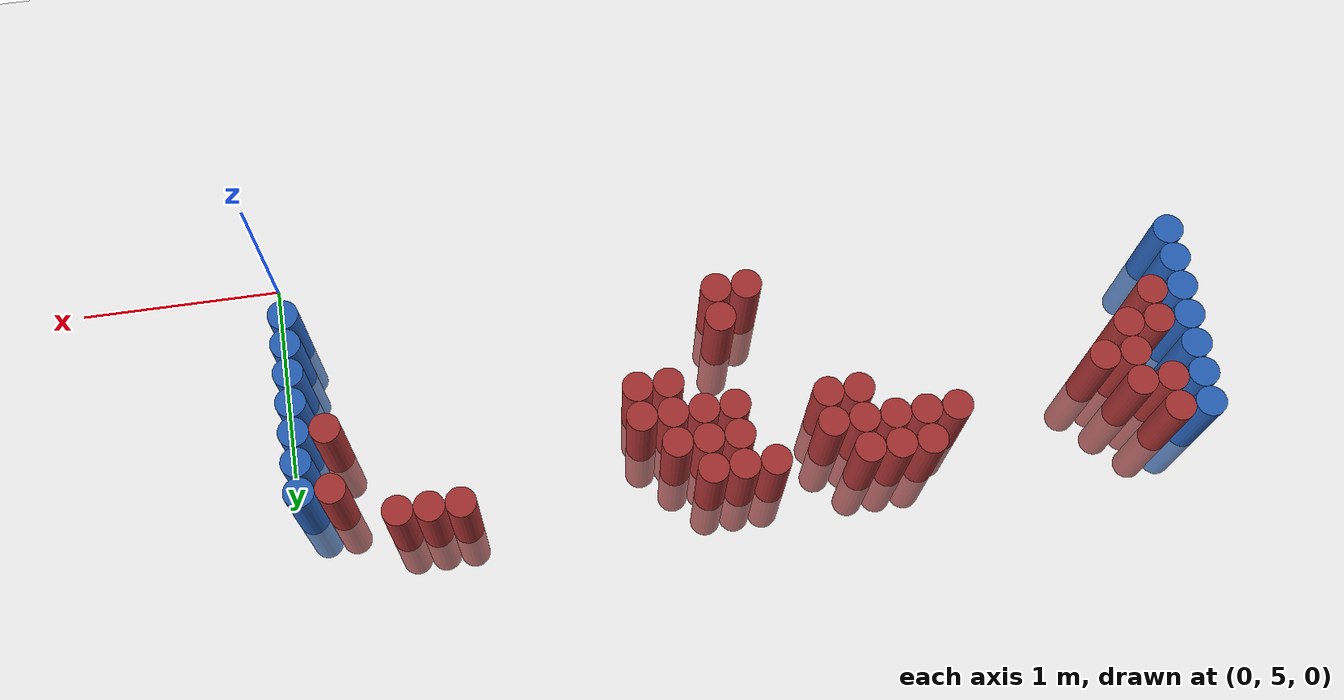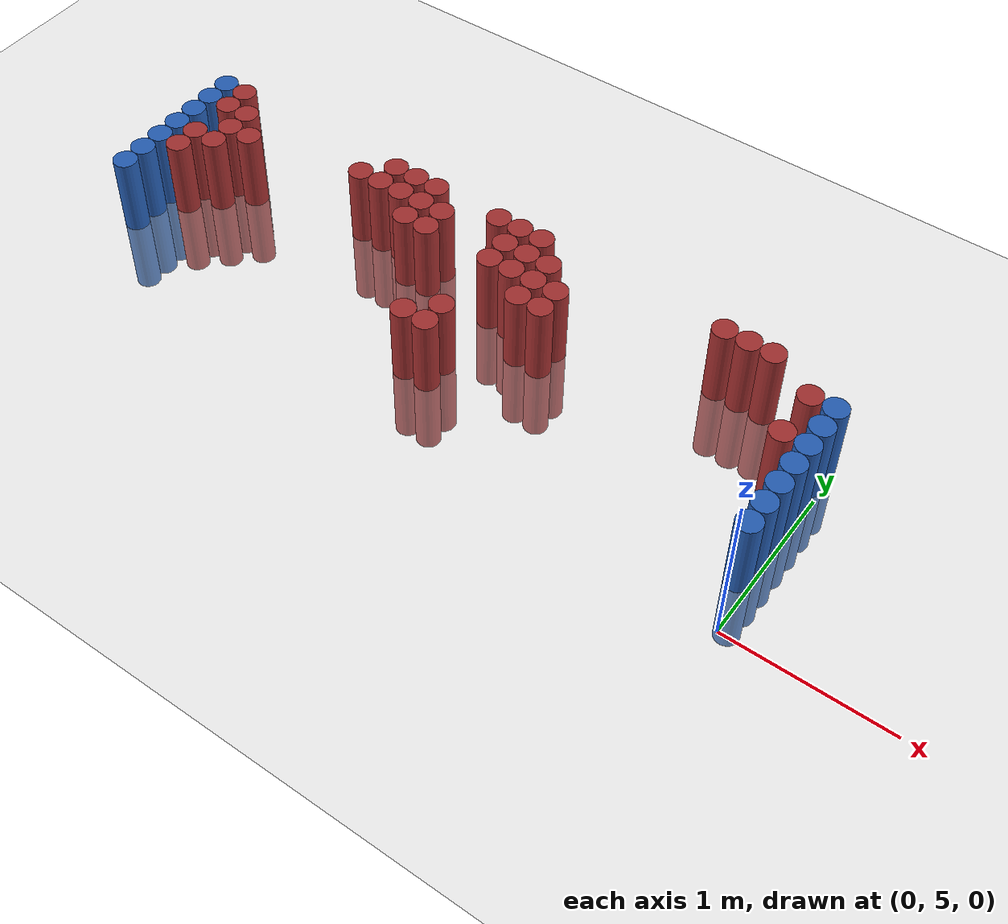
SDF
<sdf version="1.6">
 <world name="default">
  <model name="ground_plane">
   <static>1</static>
   <link name="link">
    <collision name="collision">
     <geometry><plane><normal>0 0 1</normal><size>100 100</size></plane></geometry>
     <surface><friction><ode><mu>100</mu><mu2>50</mu2></ode></friction></surface>
    </collision>
    <visual name="visual">
     <cast_shadows>0</cast_shadows>
     <geometry><plane><normal>0 0 1</normal><size>100 100</size></plane></geometry>
     <material>
      <script><uri>file://media/materials/scripts/gazebo.material</uri><name>Gazebo/Grey</name></script>
     </material>
    </visual>
   </link>
  </model>
  <model name="unit_cylinder_98">
   <static>1</static>
   <pose>-4.425000 5.475000 0.000000 0.000000 0.000000 0.000000</pose>
   <link name="link">
    <inertial>
     <mass>1</mass>
     <inertia><ixx>0.145833</ixx><ixy>0</ixy><ixz>0</ixz><iyy>0.145833</iyy><iyz>0</iyz><izz>0.125</izz></inertia>
    </inertial>
    <collision name="collision">
     <geometry><cylinder><radius>0.075000</radius><length>1</length></cylinder></geometry>
    </collision>
    <visual name="visual">
     <geometry><cylinder><radius>0.075000</radius><length>1</length></cylinder></geometry>
     <material>
      <ambient>0.152000 0.379000 0.720000 1</ambient>
      <diffuse>0.152000 0.379000 0.720000 1</diffuse>
     </material>
     <material>
      <script><name>Gazebo/Grey</name><uri>file://media/materials/scripts/gazebo.material</uri></script>
     </material>
    </visual>
   </link>
  </model>
  <model name="unit_cylinder_99">
   <static>1</static>
   <pose>-4.425000 5.625000 0.000000 0.000000 0.000000 0.000000</pose>
   <link name="link">
    <inertial>
     <mass>1</mass>
     <inertia><ixx>0.145833</ixx><ixy>0</ixy><ixz>0</ixz><iyy>0.145833</iyy><iyz>0</iyz><izz>0.125</izz></inertia>
    </inertial>
    <collision name="collision">
     <geometry><cylinder><radius>0.075000</radius><length>1</length></cylinder></geometry>
    </collision>
    <visual name="visual">
     <geometry><cylinder><radius>0.075000</radius><length>1</length></cylinder></geometry>
     <material>
      <ambient>0.152000 0.379000 0.720000 1</ambient>
      <diffuse>0.152000 0.379000 0.720000 1</diffuse>
     </material>
     <material>
      <script><name>Gazebo/Grey</name><uri>file://media/materials/scripts/gazebo.material</uri></script>
     </material>
    </visual>
   </link>
  </model>
  <model name="unit_cylinder_100">
   <static>1</static>
   <pose>-4.425000 5.775000 0.000000 0.000000 0.000000 0.000000</pose>
   <link name="link">
    <inertial>
     <mass>1</mass>
     <inertia><ixx>0.145833</ixx><ixy>0</ixy><ixz>0</ixz><iyy>0.145833</iyy><iyz>0</iyz><izz>0.125</izz></inertia>
    </inertial>
    <collision name="collision">
     <geometry><cylinder><radius>0.075000</radius><length>1</length></cylinder></geometry>
    </collision>
    <visual name="visual">
     <geometry><cylinder><radius>0.075000</radius><length>1</length></cylinder></geometry>
     <material>
      <ambient>0.152000 0.379000 0.720000 1</ambient>
      <diffuse>0.152000 0.379000 0.720000 1</diffuse>
     </material>
     <material>
      <script><name>Gazebo/Grey</name><uri>file://media/materials/scripts/gazebo.material</uri></script>
     </material>
    </visual>
   </link>
  </model>
  <model name="unit_cylinder_101">
   <static>1</static>
   <pose>-4.425000 5.925000 0.000000 0.000000 0.000000 0.000000</pose>
   <link name="link">
    <inertial>
     <mass>1</mass>
     <inertia><ixx>0.145833</ixx><ixy>0</ixy><ixz>0</ixz><iyy>0.145833</iyy><iyz>0</iyz><izz>0.125</izz></inertia>
    </inertial>
    <collision name="collision">
     <geometry><cylinder><radius>0.075000</radius><length>1</length></cylinder></geometry>
    </collision>
    <visual name="visual">
     <geometry><cylinder><radius>0.075000</radius><length>1</length></cylinder></geometry>
     <material>
      <ambient>0.152000 0.379000 0.720000 1</ambient>
      <diffuse>0.152000 0.379000 0.720000 1</diffuse>
     </material>
     <material>
      <script><name>Gazebo/Grey</name><uri>file://media/materials/scripts/gazebo.material</uri></script>
     </material>
    </visual>
   </link>
  </model>
  <model name="unit_cylinder_102">
   <static>1</static>
   <pose>-4.425000 6.075000 0.000000 0.000000 0.000000 0.000000</pose>
   <link name="link">
    <inertial>
     <mass>1</mass>
     <inertia><ixx>0.145833</ixx><ixy>0</ixy><ixz>0</ixz><iyy>0.145833</iyy><iyz>0</iyz><izz>0.125</izz></inertia>
    </inertial>
    <collision name="collision">
     <geometry><cylinder><radius>0.075000</radius><length>1</length></cylinder></geometry>
    </collision>
    <visual name="visual">
     <geometry><cylinder><radius>0.075000</radius><length>1</length></cylinder></geometry>
     <material>
      <ambient>0.152000 0.379000 0.720000 1</ambient>
      <diffuse>0.152000 0.379000 0.720000 1</diffuse>
     </material>
     <material>
      <script><name>Gazebo/Grey</name><uri>file://media/materials/scripts/gazebo.material</uri></script>
     </material>
    </visual>
   </link>
  </model>
  <model name="unit_cylinder_103">
   <static>1</static>
   <pose>-4.425000 6.225000 0.000000 0.000000 0.000000 0.000000</pose>
   <link name="link">
    <inertial>
     <mass>1</mass>
     <inertia><ixx>0.145833</ixx><ixy>0</ixy><ixz>0</ixz><iyy>0.145833</iyy><iyz>0</iyz><izz>0.125</izz></inertia>
    </inertial>
    <collision name="collision">
     <geometry><cylinder><radius>0.075000</radius><length>1</length></cylinder></geometry>
    </collision>
    <visual name="visual">
     <geometry><cylinder><radius>0.075000</radius><length>1</length></cylinder></geometry>
     <material>
      <ambient>0.152000 0.379000 0.720000 1</ambient>
      <diffuse>0.152000 0.379000 0.720000 1</diffuse>
     </material>
     <material>
      <script><name>Gazebo/Grey</name><uri>file://media/materials/scripts/gazebo.material</uri></script>
     </material>
    </visual>
   </link>
  </model>
  <model name="unit_cylinder_104">
   <static>1</static>
   <pose>-4.425000 6.375000 0.000000 0.000000 0.000000 0.000000</pose>
   <link name="link">
    <inertial>
     <mass>1</mass>
     <inertia><ixx>0.145833</ixx><ixy>0</ixy><ixz>0</ixz><iyy>0.145833</iyy><iyz>0</iyz><izz>0.125</izz></inertia>
    </inertial>
    <collision name="collision">
     <geometry><cylinder><radius>0.075000</radius><length>1</length></cylinder></geometry>
    </collision>
    <visual name="visual">
     <geometry><cylinder><radius>0.075000</radius><length>1</length></cylinder></geometry>
     <material>
      <ambient>0.152000 0.379000 0.720000 1</ambient>
      <diffuse>0.152000 0.379000 0.720000 1</diffuse>
     </material>
     <material>
      <script><name>Gazebo/Grey</name><uri>file://media/materials/scripts/gazebo.material</uri></script>
     </material>
    </visual>
   </link>
  </model>
  <model name="unit_cylinder_126">
   <static>1</static>
   <pose>-4.275000 5.775000 0.000000 0.000000 0.000000 0.000000</pose>
   <link name="link">
    <inertial>
     <mass>1</mass>
     <inertia><ixx>0.145833</ixx><ixy>0</ixy><ixz>0</ixz><iyy>0.145833</iyy><iyz>0</iyz><izz>0.125</izz></inertia>
    </inertial>
    <collision name="collision">
     <geometry><cylinder><radius>0.075000</radius><length>1</length></cylinder></geometry>
    </collision>
    <visual name="visual">
     <geometry><cylinder><radius>0.075000</radius><length>1</length></cylinder></geometry>
     <material>
      <ambient>0.648000 0.192000 0.192000 1</ambient>
      <diffuse>0.648000 0.192000 0.192000 1</diffuse>
     </material>
     <material>
      <script><name>Gazebo/Grey</name><uri>file://media/materials/scripts/gazebo.material</uri></script>
     </material>
    </visual>
   </link>
  </model>
  <model name="unit_cylinder_127">
   <static>1</static>
   <pose>-4.275000 5.925000 0.000000 0.000000 0.000000 0.000000</pose>
   <link name="link">
    <inertial>
     <mass>1</mass>
     <inertia><ixx>0.145833</ixx><ixy>0</ixy><ixz>0</ixz><iyy>0.145833</iyy><iyz>0</iyz><izz>0.125</izz></inertia>
    </inertial>
    <collision name="collision">
     <geometry><cylinder><radius>0.075000</radius><length>1</length></cylinder></geometry>
    </collision>
    <visual name="visual">
     <geometry><cylinder><radius>0.075000</radius><length>1</length></cylinder></geometry>
     <material>
      <ambient>0.648000 0.192000 0.192000 1</ambient>
      <diffuse>0.648000 0.192000 0.192000 1</diffuse>
     </material>
     <material>
      <script><name>Gazebo/Grey</name><uri>file://media/materials/scripts/gazebo.material</uri></script>
     </material>
    </visual>
   </link>
  </model>
  <model name="unit_cylinder_128">
   <static>1</static>
   <pose>-4.275000 6.225000 0.000000 0.000000 0.000000 0.000000</pose>
   <link name="link">
    <inertial>
     <mass>1</mass>
     <inertia><ixx>0.145833</ixx><ixy>0</ixy><ixz>0</ixz><iyy>0.145833</iyy><iyz>0</iyz><izz>0.125</izz></inertia>
    </inertial>
    <collision name="collision">
     <geometry><cylinder><radius>0.075000</radius><length>1</length></cylinder></geometry>
    </collision>
    <visual name="visual">
     <geometry><cylinder><radius>0.075000</radius><length>1</length></cylinder></geometry>
     <material>
      <ambient>0.648000 0.192000 0.192000 1</ambient>
      <diffuse>0.648000 0.192000 0.192000 1</diffuse>
     </material>
     <material>
      <script><name>Gazebo/Grey</name><uri>file://media/materials/scripts/gazebo.material</uri></script>
     </material>
    </visual>
   </link>
  </model>
  <model name="unit_cylinder_129">
   <static>1</static>
   <pose>-4.275000 6.375000 0.000000 0.000000 0.000000 0.000000</pose>
   <link name="link">
    <inertial>
     <mass>1</mass>
     <inertia><ixx>0.145833</ixx><ixy>0</ixy><ixz>0</ixz><iyy>0.145833</iyy><iyz>0</iyz><izz>0.125</izz></inertia>
    </inertial>
    <collision name="collision">
     <geometry><cylinder><radius>0.075000</radius><length>1</length></cylinder></geometry>
    </collision>
    <visual name="visual">
     <geometry><cylinder><radius>0.075000</radius><length>1</length></cylinder></geometry>
     <material>
      <ambient>0.648000 0.192000 0.192000 1</ambient>
      <diffuse>0.648000 0.192000 0.192000 1</diffuse>
     </material>
     <material>
      <script><name>Gazebo/Grey</name><uri>file://media/materials/scripts/gazebo.material</uri></script>
     </material>
    </visual>
   </link>
  </model>
  <model name="unit_cylinder_139">
   <static>1</static>
   <pose>-4.125000 5.925000 0.000000 0.000000 0.000000 0.000000</pose>
   <link name="link">
    <inertial>
     <mass>1</mass>
     <inertia><ixx>0.145833</ixx><ixy>0</ixy><ixz>0</ixz><iyy>0.145833</iyy><iyz>0</iyz><izz>0.125</izz></inertia>
    </inertial>
    <collision name="collision">
     <geometry><cylinder><radius>0.075000</radius><length>1</length></cylinder></geometry>
    </collision>
    <visual name="visual">
     <geometry><cylinder><radius>0.075000</radius><length>1</length></cylinder></geometry>
     <material>
      <ambient>0.648000 0.192000 0.192000 1</ambient>
      <diffuse>0.648000 0.192000 0.192000 1</diffuse>
     </material>
     <material>
      <script><name>Gazebo/Grey</name><uri>file://media/materials/scripts/gazebo.material</uri></script>
     </material>
    </visual>
   </link>
  </model>
  <model name="unit_cylinder_140">
   <static>1</static>
   <pose>-4.125000 6.075000 0.000000 0.000000 0.000000 0.000000</pose>
   <link name="link">
    <inertial>
     <mass>1</mass>
     <inertia><ixx>0.145833</ixx><ixy>0</ixy><ixz>0</ixz><iyy>0.145833</iyy><iyz>0</iyz><izz>0.125</izz></inertia>
    </inertial>
    <collision name="collision">
     <geometry><cylinder><radius>0.075000</radius><length>1</length></cylinder></geometry>
    </collision>
    <visual name="visual">
     <geometry><cylinder><radius>0.075000</radius><length>1</length></cylinder></geometry>
     <material>
      <ambient>0.648000 0.192000 0.192000 1</ambient>
      <diffuse>0.648000 0.192000 0.192000 1</diffuse>
     </material>
     <material>
      <script><name>Gazebo/Grey</name><uri>file://media/materials/scripts/gazebo.material</uri></script>
     </material>
    </visual>
   </link>
  </model>
  <model name="unit_cylinder_141">
   <static>1</static>
   <pose>-4.125000 6.225000 0.000000 0.000000 0.000000 0.000000</pose>
   <link name="link">
    <inertial>
     <mass>1</mass>
     <inertia><ixx>0.145833</ixx><ixy>0</ixy><ixz>0</ixz><iyy>0.145833</iyy><iyz>0</iyz><izz>0.125</izz></inertia>
    </inertial>
    <collision name="collision">
     <geometry><cylinder><radius>0.075000</radius><length>1</length></cylinder></geometry>
    </collision>
    <visual name="visual">
     <geometry><cylinder><radius>0.075000</radius><length>1</length></cylinder></geometry>
     <material>
      <ambient>0.648000 0.192000 0.192000 1</ambient>
      <diffuse>0.648000 0.192000 0.192000 1</diffuse>
     </material>
     <material>
      <script><name>Gazebo/Grey</name><uri>file://media/materials/scripts/gazebo.material</uri></script>
     </material>
    </visual>
   </link>
  </model>
  <model name="unit_cylinder_145">
   <static>1</static>
   <pose>-3.975000 6.075000 0.000000 0.000000 0.000000 0.000000</pose>
   <link name="link">
    <inertial>
     <mass>1</mass>
     <inertia><ixx>0.145833</ixx><ixy>0</ixy><ixz>0</ixz><iyy>0.145833</iyy><iyz>0</iyz><izz>0.125</izz></inertia>
    </inertial>
    <collision name="collision">
     <geometry><cylinder><radius>0.075000</radius><length>1</length></cylinder></geometry>
    </collision>
    <visual name="visual">
     <geometry><cylinder><radius>0.075000</radius><length>1</length></cylinder></geometry>
     <material>
      <ambient>0.648000 0.192000 0.192000 1</ambient>
      <diffuse>0.648000 0.192000 0.192000 1</diffuse>
     </material>
     <material>
      <script><name>Gazebo/Grey</name><uri>file://media/materials/scripts/gazebo.material</uri></script>
     </material>
    </visual>
   </link>
  </model>
  <model name="unit_cylinder_167">
   <static>1</static>
   <pose>-3.225000 6.225000 0.000000 0.000000 0.000000 0.000000</pose>
   <link name="link">
    <inertial>
     <mass>1</mass>
     <inertia><ixx>0.145833</ixx><ixy>0</ixy><ixz>0</ixz><iyy>0.145833</iyy><iyz>0</iyz><izz>0.125</izz></inertia>
    </inertial>
    <collision name="collision">
     <geometry><cylinder><radius>0.075000</radius><length>1</length></cylinder></geometry>
    </collision>
    <visual name="visual">
     <geometry><cylinder><radius>0.075000</radius><length>1</length></cylinder></geometry>
     <material>
      <ambient>0.648000 0.192000 0.192000 1</ambient>
      <diffuse>0.648000 0.192000 0.192000 1</diffuse>
     </material>
     <material>
      <script><name>Gazebo/Grey</name><uri>file://media/materials/scripts/gazebo.material</uri></script>
     </material>
    </visual>
   </link>
  </model>
  <model name="unit_cylinder_171">
   <static>1</static>
   <pose>-3.075000 6.225000 0.000000 0.000000 0.000000 0.000000</pose>
   <link name="link">
    <inertial>
     <mass>1</mass>
     <inertia><ixx>0.145833</ixx><ixy>0</ixy><ixz>0</ixz><iyy>0.145833</iyy><iyz>0</iyz><izz>0.125</izz></inertia>
    </inertial>
    <collision name="collision">
     <geometry><cylinder><radius>0.075000</radius><length>1</length></cylinder></geometry>
    </collision>
    <visual name="visual">
     <geometry><cylinder><radius>0.075000</radius><length>1</length></cylinder></geometry>
     <material>
      <ambient>0.648000 0.192000 0.192000 1</ambient>
      <diffuse>0.648000 0.192000 0.192000 1</diffuse>
     </material>
     <material>
      <script><name>Gazebo/Grey</name><uri>file://media/materials/scripts/gazebo.material</uri></script>
     </material>
    </visual>
   </link>
  </model>
  <model name="unit_cylinder_172">
   <static>1</static>
   <pose>-3.075000 6.375000 0.000000 0.000000 0.000000 0.000000</pose>
   <link name="link">
    <inertial>
     <mass>1</mass>
     <inertia><ixx>0.145833</ixx><ixy>0</ixy><ixz>0</ixz><iyy>0.145833</iyy><iyz>0</iyz><izz>0.125</izz></inertia>
    </inertial>
    <collision name="collision">
     <geometry><cylinder><radius>0.075000</radius><length>1</length></cylinder></geometry>
    </collision>
    <visual name="visual">
     <geometry><cylinder><radius>0.075000</radius><length>1</length></cylinder></geometry>
     <material>
      <ambient>0.648000 0.192000 0.192000 1</ambient>
      <diffuse>0.648000 0.192000 0.192000 1</diffuse>
     </material>
     <material>
      <script><name>Gazebo/Grey</name><uri>file://media/materials/scripts/gazebo.material</uri></script>
     </material>
    </visual>
   </link>
  </model>
  <model name="unit_cylinder_174">
   <static>1</static>
   <pose>-2.925000 6.225000 0.000000 0.000000 0.000000 0.000000</pose>
   <link name="link">
    <inertial>
     <mass>1</mass>
     <inertia><ixx>0.145833</ixx><ixy>0</ixy><ixz>0</ixz><iyy>0.145833</iyy><iyz>0</iyz><izz>0.125</izz></inertia>
    </inertial>
    <collision name="collision">
     <geometry><cylinder><radius>0.075000</radius><length>1</length></cylinder></geometry>
    </collision>
    <visual name="visual">
     <geometry><cylinder><radius>0.075000</radius><length>1</length></cylinder></geometry>
     <material>
      <ambient>0.648000 0.192000 0.192000 1</ambient>
      <diffuse>0.648000 0.192000 0.192000 1</diffuse>
     </material>
     <material>
      <script><name>Gazebo/Grey</name><uri>file://media/materials/scripts/gazebo.material</uri></script>
     </material>
    </visual>
   </link>
  </model>
  <model name="unit_cylinder_175">
   <static>1</static>
   <pose>-2.925000 6.375000 0.000000 0.000000 0.000000 0.000000</pose>
   <link name="link">
    <inertial>
     <mass>1</mass>
     <inertia><ixx>0.145833</ixx><ixy>0</ixy><ixz>0</ixz><iyy>0.145833</iyy><iyz>0</iyz><izz>0.125</izz></inertia>
    </inertial>
    <collision name="collision">
     <geometry><cylinder><radius>0.075000</radius><length>1</length></cylinder></geometry>
    </collision>
    <visual name="visual">
     <geometry><cylinder><radius>0.075000</radius><length>1</length></cylinder></geometry>
     <material>
      <ambient>0.648000 0.192000 0.192000 1</ambient>
      <diffuse>0.648000 0.192000 0.192000 1</diffuse>
     </material>
     <material>
      <script><name>Gazebo/Grey</name><uri>file://media/materials/scripts/gazebo.material</uri></script>
     </material>
    </visual>
   </link>
  </model>
  <model name="unit_cylinder_177">
   <static>1</static>
   <pose>-2.775000 6.075000 0.000000 0.000000 0.000000 0.000000</pose>
   <link name="link">
    <inertial>
     <mass>1</mass>
     <inertia><ixx>0.145833</ixx><ixy>0</ixy><ixz>0</ixz><iyy>0.145833</iyy><iyz>0</iyz><izz>0.125</izz></inertia>
    </inertial>
    <collision name="collision">
     <geometry><cylinder><radius>0.075000</radius><length>1</length></cylinder></geometry>
    </collision>
    <visual name="visual">
     <geometry><cylinder><radius>0.075000</radius><length>1</length></cylinder></geometry>
     <material>
      <ambient>0.648000 0.192000 0.192000 1</ambient>
      <diffuse>0.648000 0.192000 0.192000 1</diffuse>
     </material>
     <material>
      <script><name>Gazebo/Grey</name><uri>file://media/materials/scripts/gazebo.material</uri></script>
     </material>
    </visual>
   </link>
  </model>
  <model name="unit_cylinder_178">
   <static>1</static>
   <pose>-2.775000 6.225000 0.000000 0.000000 0.000000 0.000000</pose>
   <link name="link">
    <inertial>
     <mass>1</mass>
     <inertia><ixx>0.145833</ixx><ixy>0</ixy><ixz>0</ixz><iyy>0.145833</iyy><iyz>0</iyz><izz>0.125</izz></inertia>
    </inertial>
    <collision name="collision">
     <geometry><cylinder><radius>0.075000</radius><length>1</length></cylinder></geometry>
    </collision>
    <visual name="visual">
     <geometry><cylinder><radius>0.075000</radius><length>1</length></cylinder></geometry>
     <material>
      <ambient>0.648000 0.192000 0.192000 1</ambient>
      <diffuse>0.648000 0.192000 0.192000 1</diffuse>
     </material>
     <material>
      <script><name>Gazebo/Grey</name><uri>file://media/materials/scripts/gazebo.material</uri></script>
     </material>
    </visual>
   </link>
  </model>
  <model name="unit_cylinder_179">
   <static>1</static>
   <pose>-2.775000 6.375000 0.000000 0.000000 0.000000 0.000000</pose>
   <link name="link">
    <inertial>
     <mass>1</mass>
     <inertia><ixx>0.145833</ixx><ixy>0</ixy><ixz>0</ixz><iyy>0.145833</iyy><iyz>0</iyz><izz>0.125</izz></inertia>
    </inertial>
    <collision name="collision">
     <geometry><cylinder><radius>0.075000</radius><length>1</length></cylinder></geometry>
    </collision>
    <visual name="visual">
     <geometry><cylinder><radius>0.075000</radius><length>1</length></cylinder></geometry>
     <material>
      <ambient>0.648000 0.192000 0.192000 1</ambient>
      <diffuse>0.648000 0.192000 0.192000 1</diffuse>
     </material>
     <material>
      <script><name>Gazebo/Grey</name><uri>file://media/materials/scripts/gazebo.material</uri></script>
     </material>
    </visual>
   </link>
  </model>
  <model name="unit_cylinder_181">
   <static>1</static>
   <pose>-2.625000 6.075000 0.000000 0.000000 0.000000 0.000000</pose>
   <link name="link">
    <inertial>
     <mass>1</mass>
     <inertia><ixx>0.145833</ixx><ixy>0</ixy><ixz>0</ixz><iyy>0.145833</iyy><iyz>0</iyz><izz>0.125</izz></inertia>
    </inertial>
    <collision name="collision">
     <geometry><cylinder><radius>0.075000</radius><length>1</length></cylinder></geometry>
    </collision>
    <visual name="visual">
     <geometry><cylinder><radius>0.075000</radius><length>1</length></cylinder></geometry>
     <material>
      <ambient>0.648000 0.192000 0.192000 1</ambient>
      <diffuse>0.648000 0.192000 0.192000 1</diffuse>
     </material>
     <material>
      <script><name>Gazebo/Grey</name><uri>file://media/materials/scripts/gazebo.material</uri></script>
     </material>
    </visual>
   </link>
  </model>
  <model name="unit_cylinder_182">
   <static>1</static>
   <pose>-2.625000 6.225000 0.000000 0.000000 0.000000 0.000000</pose>
   <link name="link">
    <inertial>
     <mass>1</mass>
     <inertia><ixx>0.145833</ixx><ixy>0</ixy><ixz>0</ixz><iyy>0.145833</iyy><iyz>0</iyz><izz>0.125</izz></inertia>
    </inertial>
    <collision name="collision">
     <geometry><cylinder><radius>0.075000</radius><length>1</length></cylinder></geometry>
    </collision>
    <visual name="visual">
     <geometry><cylinder><radius>0.075000</radius><length>1</length></cylinder></geometry>
     <material>
      <ambient>0.648000 0.192000 0.192000 1</ambient>
      <diffuse>0.648000 0.192000 0.192000 1</diffuse>
     </material>
     <material>
      <script><name>Gazebo/Grey</name><uri>file://media/materials/scripts/gazebo.material</uri></script>
     </material>
    </visual>
   </link>
  </model>
  <model name="unit_cylinder_189">
   <static>1</static>
   <pose>-2.325000 5.475000 0.000000 0.000000 0.000000 0.000000</pose>
   <link name="link">
    <inertial>
     <mass>1</mass>
     <inertia><ixx>0.145833</ixx><ixy>0</ixy><ixz>0</ixz><iyy>0.145833</iyy><iyz>0</iyz><izz>0.125</izz></inertia>
    </inertial>
    <collision name="collision">
     <geometry><cylinder><radius>0.075000</radius><length>1</length></cylinder></geometry>
    </collision>
    <visual name="visual">
     <geometry><cylinder><radius>0.075000</radius><length>1</length></cylinder></geometry>
     <material>
      <ambient>0.648000 0.192000 0.192000 1</ambient>
      <diffuse>0.648000 0.192000 0.192000 1</diffuse>
     </material>
     <material>
      <script><name>Gazebo/Grey</name><uri>file://media/materials/scripts/gazebo.material</uri></script>
     </material>
    </visual>
   </link>
  </model>
  <model name="unit_cylinder_190">
   <static>1</static>
   <pose>-2.325000 6.375000 0.000000 0.000000 0.000000 0.000000</pose>
   <link name="link">
    <inertial>
     <mass>1</mass>
     <inertia><ixx>0.145833</ixx><ixy>0</ixy><ixz>0</ixz><iyy>0.145833</iyy><iyz>0</iyz><izz>0.125</izz></inertia>
    </inertial>
    <collision name="collision">
     <geometry><cylinder><radius>0.075000</radius><length>1</length></cylinder></geometry>
    </collision>
    <visual name="visual">
     <geometry><cylinder><radius>0.075000</radius><length>1</length></cylinder></geometry>
     <material>
      <ambient>0.648000 0.192000 0.192000 1</ambient>
      <diffuse>0.648000 0.192000 0.192000 1</diffuse>
     </material>
     <material>
      <script><name>Gazebo/Grey</name><uri>file://media/materials/scripts/gazebo.material</uri></script>
     </material>
    </visual>
   </link>
  </model>
  <model name="unit_cylinder_194">
   <static>1</static>
   <pose>-2.175000 5.475000 0.000000 0.000000 0.000000 0.000000</pose>
   <link name="link">
    <inertial>
     <mass>1</mass>
     <inertia><ixx>0.145833</ixx><ixy>0</ixy><ixz>0</ixz><iyy>0.145833</iyy><iyz>0</iyz><izz>0.125</izz></inertia>
    </inertial>
    <collision name="collision">
     <geometry><cylinder><radius>0.075000</radius><length>1</length></cylinder></geometry>
    </collision>
    <visual name="visual">
     <geometry><cylinder><radius>0.075000</radius><length>1</length></cylinder></geometry>
     <material>
      <ambient>0.648000 0.192000 0.192000 1</ambient>
      <diffuse>0.648000 0.192000 0.192000 1</diffuse>
     </material>
     <material>
      <script><name>Gazebo/Grey</name><uri>file://media/materials/scripts/gazebo.material</uri></script>
     </material>
    </visual>
   </link>
  </model>
  <model name="unit_cylinder_195">
   <static>1</static>
   <pose>-2.175000 5.625000 0.000000 0.000000 0.000000 0.000000</pose>
   <link name="link">
    <inertial>
     <mass>1</mass>
     <inertia><ixx>0.145833</ixx><ixy>0</ixy><ixz>0</ixz><iyy>0.145833</iyy><iyz>0</iyz><izz>0.125</izz></inertia>
    </inertial>
    <collision name="collision">
     <geometry><cylinder><radius>0.075000</radius><length>1</length></cylinder></geometry>
    </collision>
    <visual name="visual">
     <geometry><cylinder><radius>0.075000</radius><length>1</length></cylinder></geometry>
     <material>
      <ambient>0.648000 0.192000 0.192000 1</ambient>
      <diffuse>0.648000 0.192000 0.192000 1</diffuse>
     </material>
     <material>
      <script><name>Gazebo/Grey</name><uri>file://media/materials/scripts/gazebo.material</uri></script>
     </material>
    </visual>
   </link>
  </model>
  <model name="unit_cylinder_196">
   <static>1</static>
   <pose>-2.175000 6.075000 0.000000 0.000000 0.000000 0.000000</pose>
   <link name="link">
    <inertial>
     <mass>1</mass>
     <inertia><ixx>0.145833</ixx><ixy>0</ixy><ixz>0</ixz><iyy>0.145833</iyy><iyz>0</iyz><izz>0.125</izz></inertia>
    </inertial>
    <collision name="collision">
     <geometry><cylinder><radius>0.075000</radius><length>1</length></cylinder></geometry>
    </collision>
    <visual name="visual">
     <geometry><cylinder><radius>0.075000</radius><length>1</length></cylinder></geometry>
     <material>
      <ambient>0.648000 0.192000 0.192000 1</ambient>
      <diffuse>0.648000 0.192000 0.192000 1</diffuse>
     </material>
     <material>
      <script><name>Gazebo/Grey</name><uri>file://media/materials/scripts/gazebo.material</uri></script>
     </material>
    </visual>
   </link>
  </model>
  <model name="unit_cylinder_197">
   <static>1</static>
   <pose>-2.175000 6.225000 0.000000 0.000000 0.000000 0.000000</pose>
   <link name="link">
    <inertial>
     <mass>1</mass>
     <inertia><ixx>0.145833</ixx><ixy>0</ixy><ixz>0</ixz><iyy>0.145833</iyy><iyz>0</iyz><izz>0.125</izz></inertia>
    </inertial>
    <collision name="collision">
     <geometry><cylinder><radius>0.075000</radius><length>1</length></cylinder></geometry>
    </collision>
    <visual name="visual">
     <geometry><cylinder><radius>0.075000</radius><length>1</length></cylinder></geometry>
     <material>
      <ambient>0.648000 0.192000 0.192000 1</ambient>
      <diffuse>0.648000 0.192000 0.192000 1</diffuse>
     </material>
     <material>
      <script><name>Gazebo/Grey</name><uri>file://media/materials/scripts/gazebo.material</uri></script>
     </material>
    </visual>
   </link>
  </model>
  <model name="unit_cylinder_198">
   <static>1</static>
   <pose>-2.175000 6.375000 0.000000 0.000000 0.000000 0.000000</pose>
   <link name="link">
    <inertial>
     <mass>1</mass>
     <inertia><ixx>0.145833</ixx><ixy>0</ixy><ixz>0</ixz><iyy>0.145833</iyy><iyz>0</iyz><izz>0.125</izz></inertia>
    </inertial>
    <collision name="collision">
     <geometry><cylinder><radius>0.075000</radius><length>1</length></cylinder></geometry>
    </collision>
    <visual name="visual">
     <geometry><cylinder><radius>0.075000</radius><length>1</length></cylinder></geometry>
     <material>
      <ambient>0.648000 0.192000 0.192000 1</ambient>
      <diffuse>0.648000 0.192000 0.192000 1</diffuse>
     </material>
     <material>
      <script><name>Gazebo/Grey</name><uri>file://media/materials/scripts/gazebo.material</uri></script>
     </material>
    </visual>
   </link>
  </model>
  <model name="unit_cylinder_204">
   <static>1</static>
   <pose>-2.025000 6.075000 0.000000 0.000000 0.000000 0.000000</pose>
   <link name="link">
    <inertial>
     <mass>1</mass>
     <inertia><ixx>0.145833</ixx><ixy>0</ixy><ixz>0</ixz><iyy>0.145833</iyy><iyz>0</iyz><izz>0.125</izz></inertia>
    </inertial>
    <collision name="collision">
     <geometry><cylinder><radius>0.075000</radius><length>1</length></cylinder></geometry>
    </collision>
    <visual name="visual">
     <geometry><cylinder><radius>0.075000</radius><length>1</length></cylinder></geometry>
     <material>
      <ambient>0.648000 0.192000 0.192000 1</ambient>
      <diffuse>0.648000 0.192000 0.192000 1</diffuse>
     </material>
     <material>
      <script><name>Gazebo/Grey</name><uri>file://media/materials/scripts/gazebo.material</uri></script>
     </material>
    </visual>
   </link>
  </model>
  <model name="unit_cylinder_205">
   <static>1</static>
   <pose>-2.025000 6.225000 0.000000 0.000000 0.000000 0.000000</pose>
   <link name="link">
    <inertial>
     <mass>1</mass>
     <inertia><ixx>0.145833</ixx><ixy>0</ixy><ixz>0</ixz><iyy>0.145833</iyy><iyz>0</iyz><izz>0.125</izz></inertia>
    </inertial>
    <collision name="collision">
     <geometry><cylinder><radius>0.075000</radius><length>1</length></cylinder></geometry>
    </collision>
    <visual name="visual">
     <geometry><cylinder><radius>0.075000</radius><length>1</length></cylinder></geometry>
     <material>
      <ambient>0.648000 0.192000 0.192000 1</ambient>
      <diffuse>0.648000 0.192000 0.192000 1</diffuse>
     </material>
     <material>
      <script><name>Gazebo/Grey</name><uri>file://media/materials/scripts/gazebo.material</uri></script>
     </material>
    </visual>
   </link>
  </model>
  <model name="unit_cylinder_206">
   <static>1</static>
   <pose>-2.025000 6.375000 0.000000 0.000000 0.000000 0.000000</pose>
   <link name="link">
    <inertial>
     <mass>1</mass>
     <inertia><ixx>0.145833</ixx><ixy>0</ixy><ixz>0</ixz><iyy>0.145833</iyy><iyz>0</iyz><izz>0.125</izz></inertia>
    </inertial>
    <collision name="collision">
     <geometry><cylinder><radius>0.075000</radius><length>1</length></cylinder></geometry>
    </collision>
    <visual name="visual">
     <geometry><cylinder><radius>0.075000</radius><length>1</length></cylinder></geometry>
     <material>
      <ambient>0.648000 0.192000 0.192000 1</ambient>
      <diffuse>0.648000 0.192000 0.192000 1</diffuse>
     </material>
     <material>
      <script><name>Gazebo/Grey</name><uri>file://media/materials/scripts/gazebo.material</uri></script>
     </material>
    </visual>
   </link>
  </model>
  <model name="unit_cylinder_216">
   <static>1</static>
   <pose>-1.875000 5.925000 0.000000 0.000000 0.000000 0.000000</pose>
   <link name="link">
    <inertial>
     <mass>1</mass>
     <inertia><ixx>0.145833</ixx><ixy>0</ixy><ixz>0</ixz><iyy>0.145833</iyy><iyz>0</iyz><izz>0.125</izz></inertia>
    </inertial>
    <collision name="collision">
     <geometry><cylinder><radius>0.075000</radius><length>1</length></cylinder></geometry>
    </collision>
    <visual name="visual">
     <geometry><cylinder><radius>0.075000</radius><length>1</length></cylinder></geometry>
     <material>
      <ambient>0.648000 0.192000 0.192000 1</ambient>
      <diffuse>0.648000 0.192000 0.192000 1</diffuse>
     </material>
     <material>
      <script><name>Gazebo/Grey</name><uri>file://media/materials/scripts/gazebo.material</uri></script>
     </material>
    </visual>
   </link>
  </model>
  <model name="unit_cylinder_217">
   <static>1</static>
   <pose>-1.875000 6.075000 0.000000 0.000000 0.000000 0.000000</pose>
   <link name="link">
    <inertial>
     <mass>1</mass>
     <inertia><ixx>0.145833</ixx><ixy>0</ixy><ixz>0</ixz><iyy>0.145833</iyy><iyz>0</iyz><izz>0.125</izz></inertia>
    </inertial>
    <collision name="collision">
     <geometry><cylinder><radius>0.075000</radius><length>1</length></cylinder></geometry>
    </collision>
    <visual name="visual">
     <geometry><cylinder><radius>0.075000</radius><length>1</length></cylinder></geometry>
     <material>
      <ambient>0.648000 0.192000 0.192000 1</ambient>
      <diffuse>0.648000 0.192000 0.192000 1</diffuse>
     </material>
     <material>
      <script><name>Gazebo/Grey</name><uri>file://media/materials/scripts/gazebo.material</uri></script>
     </material>
    </visual>
   </link>
  </model>
  <model name="unit_cylinder_218">
   <static>1</static>
   <pose>-1.875000 6.225000 0.000000 0.000000 0.000000 0.000000</pose>
   <link name="link">
    <inertial>
     <mass>1</mass>
     <inertia><ixx>0.145833</ixx><ixy>0</ixy><ixz>0</ixz><iyy>0.145833</iyy><iyz>0</iyz><izz>0.125</izz></inertia>
    </inertial>
    <collision name="collision">
     <geometry><cylinder><radius>0.075000</radius><length>1</length></cylinder></geometry>
    </collision>
    <visual name="visual">
     <geometry><cylinder><radius>0.075000</radius><length>1</length></cylinder></geometry>
     <material>
      <ambient>0.648000 0.192000 0.192000 1</ambient>
      <diffuse>0.648000 0.192000 0.192000 1</diffuse>
     </material>
     <material>
      <script><name>Gazebo/Grey</name><uri>file://media/materials/scripts/gazebo.material</uri></script>
     </material>
    </visual>
   </link>
  </model>
  <model name="unit_cylinder_228">
   <static>1</static>
   <pose>-1.725000 5.925000 0.000000 0.000000 0.000000 0.000000</pose>
   <link name="link">
    <inertial>
     <mass>1</mass>
     <inertia><ixx>0.145833</ixx><ixy>0</ixy><ixz>0</ixz><iyy>0.145833</iyy><iyz>0</iyz><izz>0.125</izz></inertia>
    </inertial>
    <collision name="collision">
     <geometry><cylinder><radius>0.075000</radius><length>1</length></cylinder></geometry>
    </collision>
    <visual name="visual">
     <geometry><cylinder><radius>0.075000</radius><length>1</length></cylinder></geometry>
     <material>
      <ambient>0.648000 0.192000 0.192000 1</ambient>
      <diffuse>0.648000 0.192000 0.192000 1</diffuse>
     </material>
     <material>
      <script><name>Gazebo/Grey</name><uri>file://media/materials/scripts/gazebo.material</uri></script>
     </material>
    </visual>
   </link>
  </model>
  <model name="unit_cylinder_229">
   <static>1</static>
   <pose>-1.725000 6.075000 0.000000 0.000000 0.000000 0.000000</pose>
   <link name="link">
    <inertial>
     <mass>1</mass>
     <inertia><ixx>0.145833</ixx><ixy>0</ixy><ixz>0</ixz><iyy>0.145833</iyy><iyz>0</iyz><izz>0.125</izz></inertia>
    </inertial>
    <collision name="collision">
     <geometry><cylinder><radius>0.075000</radius><length>1</length></cylinder></geometry>
    </collision>
    <visual name="visual">
     <geometry><cylinder><radius>0.075000</radius><length>1</length></cylinder></geometry>
     <material>
      <ambient>0.648000 0.192000 0.192000 1</ambient>
      <diffuse>0.648000 0.192000 0.192000 1</diffuse>
     </material>
     <material>
      <script><name>Gazebo/Grey</name><uri>file://media/materials/scripts/gazebo.material</uri></script>
     </material>
    </visual>
   </link>
  </model>
  <model name="unit_cylinder_245">
   <static>1</static>
   <pose>-0.825000 6.375000 0.000000 0.000000 0.000000 0.000000</pose>
   <link name="link">
    <inertial>
     <mass>1</mass>
     <inertia><ixx>0.145833</ixx><ixy>0</ixy><ixz>0</ixz><iyy>0.145833</iyy><iyz>0</iyz><izz>0.125</izz></inertia>
    </inertial>
    <collision name="collision">
     <geometry><cylinder><radius>0.075000</radius><length>1</length></cylinder></geometry>
    </collision>
    <visual name="visual">
     <geometry><cylinder><radius>0.075000</radius><length>1</length></cylinder></geometry>
     <material>
      <ambient>0.648000 0.192000 0.192000 1</ambient>
      <diffuse>0.648000 0.192000 0.192000 1</diffuse>
     </material>
     <material>
      <script><name>Gazebo/Grey</name><uri>file://media/materials/scripts/gazebo.material</uri></script>
     </material>
    </visual>
   </link>
  </model>
  <model name="unit_cylinder_252">
   <static>1</static>
   <pose>-0.675000 6.375000 0.000000 0.000000 0.000000 0.000000</pose>
   <link name="link">
    <inertial>
     <mass>1</mass>
     <inertia><ixx>0.145833</ixx><ixy>0</ixy><ixz>0</ixz><iyy>0.145833</iyy><iyz>0</iyz><izz>0.125</izz></inertia>
    </inertial>
    <collision name="collision">
     <geometry><cylinder><radius>0.075000</radius><length>1</length></cylinder></geometry>
    </collision>
    <visual name="visual">
     <geometry><cylinder><radius>0.075000</radius><length>1</length></cylinder></geometry>
     <material>
      <ambient>0.648000 0.192000 0.192000 1</ambient>
      <diffuse>0.648000 0.192000 0.192000 1</diffuse>
     </material>
     <material>
      <script><name>Gazebo/Grey</name><uri>file://media/materials/scripts/gazebo.material</uri></script>
     </material>
    </visual>
   </link>
  </model>
  <model name="unit_cylinder_258">
   <static>1</static>
   <pose>-0.525000 6.375000 0.000000 0.000000 0.000000 0.000000</pose>
   <link name="link">
    <inertial>
     <mass>1</mass>
     <inertia><ixx>0.145833</ixx><ixy>0</ixy><ixz>0</ixz><iyy>0.145833</iyy><iyz>0</iyz><izz>0.125</izz></inertia>
    </inertial>
    <collision name="collision">
     <geometry><cylinder><radius>0.075000</radius><length>1</length></cylinder></geometry>
    </collision>
    <visual name="visual">
     <geometry><cylinder><radius>0.075000</radius><length>1</length></cylinder></geometry>
     <material>
      <ambient>0.648000 0.192000 0.192000 1</ambient>
      <diffuse>0.648000 0.192000 0.192000 1</diffuse>
     </material>
     <material>
      <script><name>Gazebo/Grey</name><uri>file://media/materials/scripts/gazebo.material</uri></script>
     </material>
    </visual>
   </link>
  </model>
  <model name="unit_cylinder_271">
   <static>1</static>
   <pose>-0.225000 5.925000 0.000000 0.000000 0.000000 0.000000</pose>
   <link name="link">
    <inertial>
     <mass>1</mass>
     <inertia><ixx>0.145833</ixx><ixy>0</ixy><ixz>0</ixz><iyy>0.145833</iyy><iyz>0</iyz><izz>0.125</izz></inertia>
    </inertial>
    <collision name="collision">
     <geometry><cylinder><radius>0.075000</radius><length>1</length></cylinder></geometry>
    </collision>
    <visual name="visual">
     <geometry><cylinder><radius>0.075000</radius><length>1</length></cylinder></geometry>
     <material>
      <ambient>0.648000 0.192000 0.192000 1</ambient>
      <diffuse>0.648000 0.192000 0.192000 1</diffuse>
     </material>
     <material>
      <script><name>Gazebo/Grey</name><uri>file://media/materials/scripts/gazebo.material</uri></script>
     </material>
    </visual>
   </link>
  </model>
  <model name="unit_cylinder_272">
   <static>1</static>
   <pose>-0.225000 6.225000 0.000000 0.000000 0.000000 0.000000</pose>
   <link name="link">
    <inertial>
     <mass>1</mass>
     <inertia><ixx>0.145833</ixx><ixy>0</ixy><ixz>0</ixz><iyy>0.145833</iyy><iyz>0</iyz><izz>0.125</izz></inertia>
    </inertial>
    <collision name="collision">
     <geometry><cylinder><radius>0.075000</radius><length>1</length></cylinder></geometry>
    </collision>
    <visual name="visual">
     <geometry><cylinder><radius>0.075000</radius><length>1</length></cylinder></geometry>
     <material>
      <ambient>0.648000 0.192000 0.192000 1</ambient>
      <diffuse>0.648000 0.192000 0.192000 1</diffuse>
     </material>
     <material>
      <script><name>Gazebo/Grey</name><uri>file://media/materials/scripts/gazebo.material</uri></script>
     </material>
    </visual>
   </link>
  </model>
  <model name="unit_cylinder_283">
   <static>1</static>
   <pose>-0.075000 5.325000 0.000000 0.000000 0.000000 0.000000</pose>
   <link name="link">
    <inertial>
     <mass>1</mass>
     <inertia><ixx>0.145833</ixx><ixy>0</ixy><ixz>0</ixz><iyy>0.145833</iyy><iyz>0</iyz><izz>0.125</izz></inertia>
    </inertial>
    <collision name="collision">
     <geometry><cylinder><radius>0.075000</radius><length>1</length></cylinder></geometry>
    </collision>
    <visual name="visual">
     <geometry><cylinder><radius>0.075000</radius><length>1</length></cylinder></geometry>
     <material>
      <ambient>0.152000 0.379000 0.720000 1</ambient>
      <diffuse>0.152000 0.379000 0.720000 1</diffuse>
     </material>
     <material>
      <script><name>Gazebo/Grey</name><uri>file://media/materials/scripts/gazebo.material</uri></script>
     </material>
    </visual>
   </link>
  </model>
  <model name="unit_cylinder_284">
   <static>1</static>
   <pose>-0.075000 5.475000 0.000000 0.000000 0.000000 0.000000</pose>
   <link name="link">
    <inertial>
     <mass>1</mass>
     <inertia><ixx>0.145833</ixx><ixy>0</ixy><ixz>0</ixz><iyy>0.145833</iyy><iyz>0</iyz><izz>0.125</izz></inertia>
    </inertial>
    <collision name="collision">
     <geometry><cylinder><radius>0.075000</radius><length>1</length></cylinder></geometry>
    </collision>
    <visual name="visual">
     <geometry><cylinder><radius>0.075000</radius><length>1</length></cylinder></geometry>
     <material>
      <ambient>0.152000 0.379000 0.720000 1</ambient>
      <diffuse>0.152000 0.379000 0.720000 1</diffuse>
     </material>
     <material>
      <script><name>Gazebo/Grey</name><uri>file://media/materials/scripts/gazebo.material</uri></script>
     </material>
    </visual>
   </link>
  </model>
  <model name="unit_cylinder_285">
   <static>1</static>
   <pose>-0.075000 5.625000 0.000000 0.000000 0.000000 0.000000</pose>
   <link name="link">
    <inertial>
     <mass>1</mass>
     <inertia><ixx>0.145833</ixx><ixy>0</ixy><ixz>0</ixz><iyy>0.145833</iyy><iyz>0</iyz><izz>0.125</izz></inertia>
    </inertial>
    <collision name="collision">
     <geometry><cylinder><radius>0.075000</radius><length>1</length></cylinder></geometry>
    </collision>
    <visual name="visual">
     <geometry><cylinder><radius>0.075000</radius><length>1</length></cylinder></geometry>
     <material>
      <ambient>0.152000 0.379000 0.720000 1</ambient>
      <diffuse>0.152000 0.379000 0.720000 1</diffuse>
     </material>
     <material>
      <script><name>Gazebo/Grey</name><uri>file://media/materials/scripts/gazebo.material</uri></script>
     </material>
    </visual>
   </link>
  </model>
  <model name="unit_cylinder_286">
   <static>1</static>
   <pose>-0.075000 5.775000 0.000000 0.000000 0.000000 0.000000</pose>
   <link name="link">
    <inertial>
     <mass>1</mass>
     <inertia><ixx>0.145833</ixx><ixy>0</ixy><ixz>0</ixz><iyy>0.145833</iyy><iyz>0</iyz><izz>0.125</izz></inertia>
    </inertial>
    <collision name="collision">
     <geometry><cylinder><radius>0.075000</radius><length>1</length></cylinder></geometry>
    </collision>
    <visual name="visual">
     <geometry><cylinder><radius>0.075000</radius><length>1</length></cylinder></geometry>
     <material>
      <ambient>0.152000 0.379000 0.720000 1</ambient>
      <diffuse>0.152000 0.379000 0.720000 1</diffuse>
     </material>
     <material>
      <script><name>Gazebo/Grey</name><uri>file://media/materials/scripts/gazebo.material</uri></script>
     </material>
    </visual>
   </link>
  </model>
  <model name="unit_cylinder_287">
   <static>1</static>
   <pose>-0.075000 5.925000 0.000000 0.000000 0.000000 0.000000</pose>
   <link name="link">
    <inertial>
     <mass>1</mass>
     <inertia><ixx>0.145833</ixx><ixy>0</ixy><ixz>0</ixz><iyy>0.145833</iyy><iyz>0</iyz><izz>0.125</izz></inertia>
    </inertial>
    <collision name="collision">
     <geometry><cylinder><radius>0.075000</radius><length>1</length></cylinder></geometry>
    </collision>
    <visual name="visual">
     <geometry><cylinder><radius>0.075000</radius><length>1</length></cylinder></geometry>
     <material>
      <ambient>0.152000 0.379000 0.720000 1</ambient>
      <diffuse>0.152000 0.379000 0.720000 1</diffuse>
     </material>
     <material>
      <script><name>Gazebo/Grey</name><uri>file://media/materials/scripts/gazebo.material</uri></script>
     </material>
    </visual>
   </link>
  </model>
  <model name="unit_cylinder_288">
   <static>1</static>
   <pose>-0.075000 6.075000 0.000000 0.000000 0.000000 0.000000</pose>
   <link name="link">
    <inertial>
     <mass>1</mass>
     <inertia><ixx>0.145833</ixx><ixy>0</ixy><ixz>0</ixz><iyy>0.145833</iyy><iyz>0</iyz><izz>0.125</izz></inertia>
    </inertial>
    <collision name="collision">
     <geometry><cylinder><radius>0.075000</radius><length>1</length></cylinder></geometry>
    </collision>
    <visual name="visual">
     <geometry><cylinder><radius>0.075000</radius><length>1</length></cylinder></geometry>
     <material>
      <ambient>0.152000 0.379000 0.720000 1</ambient>
      <diffuse>0.152000 0.379000 0.720000 1</diffuse>
     </material>
     <material>
      <script><name>Gazebo/Grey</name><uri>file://media/materials/scripts/gazebo.material</uri></script>
     </material>
    </visual>
   </link>
  </model>
  <model name="unit_cylinder_289">
   <static>1</static>
   <pose>-0.075000 6.225000 0.000000 0.000000 0.000000 0.000000</pose>
   <link name="link">
    <inertial>
     <mass>1</mass>
     <inertia><ixx>0.145833</ixx><ixy>0</ixy><ixz>0</ixz><iyy>0.145833</iyy><iyz>0</iyz><izz>0.125</izz></inertia>
    </inertial>
    <collision name="collision">
     <geometry><cylinder><radius>0.075000</radius><length>1</length></cylinder></geometry>
    </collision>
    <visual name="visual">
     <geometry><cylinder><radius>0.075000</radius><length>1</length></cylinder></geometry>
     <material>
      <ambient>0.152000 0.379000 0.720000 1</ambient>
      <diffuse>0.152000 0.379000 0.720000 1</diffuse>
     </material>
     <material>
      <script><name>Gazebo/Grey</name><uri>file://media/materials/scripts/gazebo.material</uri></script>
     </material>
    </visual>
   </link>
  </model>
 </world>
</sdf>
